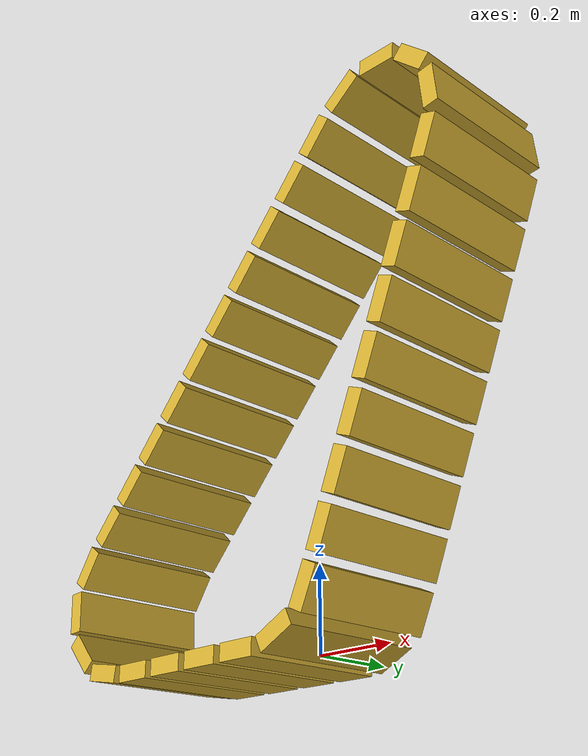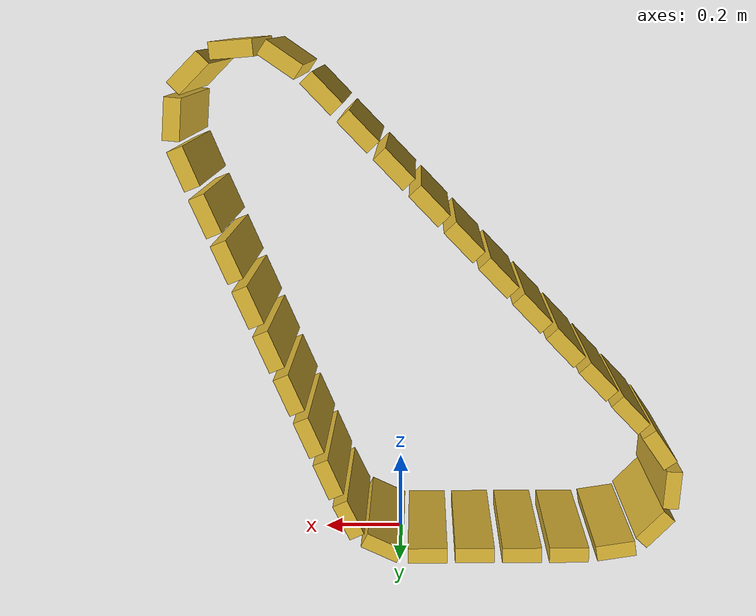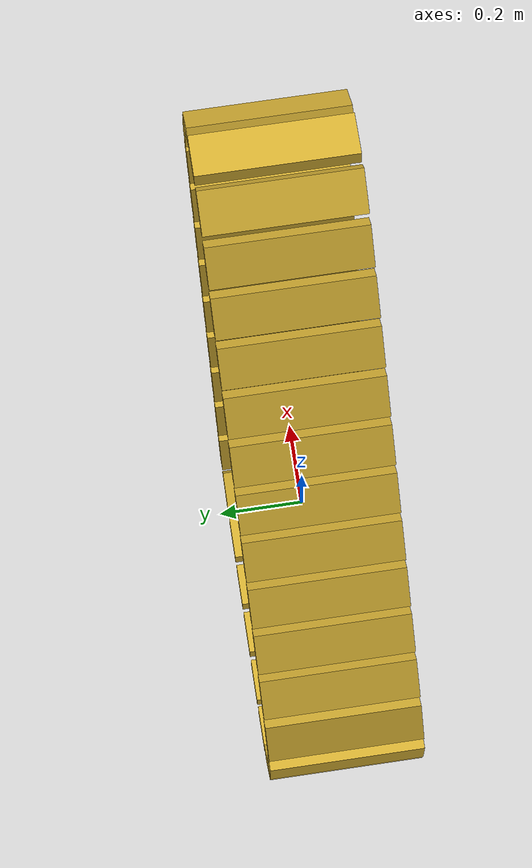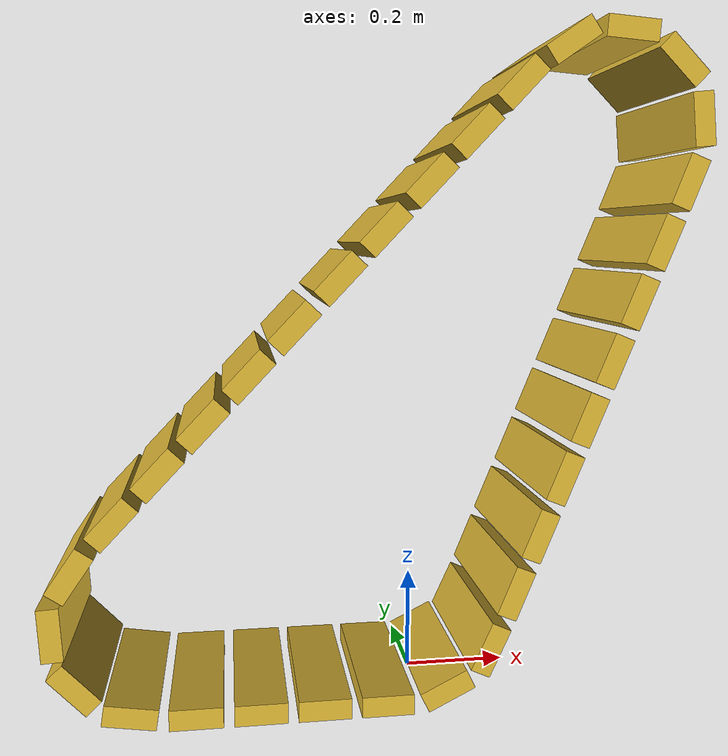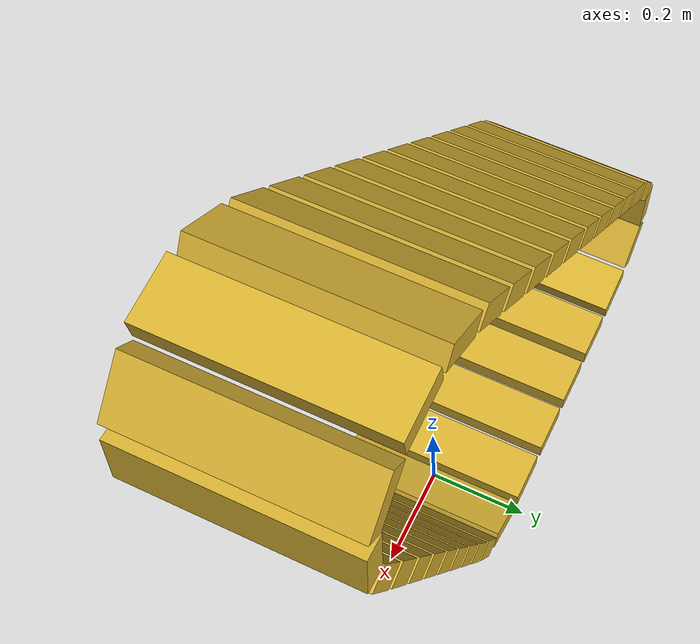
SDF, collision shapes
<sdf version='1.4'>
  <model name='Tracks'>
    <link name='base_link'>
      <pose>0 0 0 0 -0 0</pose>
      <inertial>
        <pose>-0.064905 -1.9608e-06 -0.00051348 0 -0 0</pose>
        <mass>1.5879</mass>
        <inertia>
          <ixx>0.015448</ixx>
          <ixy>1.7422e-07</ixy>
          <ixz>-3.9882e-06</ixz>
          <iyy>0.0022386</iyy>
          <iyz>1.7148e-08</iyz>
          <izz>0.017129</izz>
        </inertia>
      </inertial>
      <collision name='base_link_collision'>
        <pose>-0.07 0 0 0 -0 0</pose>
        <geometry>
          <box>
            <size>0.1 0.36 0.04</size>
          </box>
        </geometry>
        <surface>
          <contact>
            <ode/>
          </contact>
          <friction>
            <ode>
              <mu>1</mu>
              <mu2>1</mu2>
            </ode>
          </friction>
        </surface>
      </collision>
      <visual name='base_link_visual'>
        <pose>0 0 0 0 -0 0</pose>
        <geometry>
          <mesh>
            <scale>1 1 1</scale>
            <uri>model://tracks/meshes_trucks/base_link.STL</uri>
          </mesh>
        </geometry>
        <material>
          <script>
            <name>Gazebo/Gold</name>
            <uri>__default__</uri>
          </script>
        </material>
      </visual>
      <gravity>1</gravity>
      <velocity_decay>
        <linear>0</linear>
        <angular>0</angular>
      </velocity_decay>
      <self_collide>1</self_collide>
    </link>
<!--  Added by Nir -->
    <joint name='j33' type='revolute'>
      <child>base_link</child>
      <parent>l32</parent>
      <axis>
        <xyz>0 1 0</xyz>
        <limit>
          <lower>-1e+16</lower>
          <upper>1e+16</upper>
        </limit>
        <dynamics/>
      </axis>
    </joint>
<!-- End of Added by Nir -->
    <link name='l2'>
      <pose>-0.12 0 0 0 1.1102e-16 0</pose>
      <inertial>
        <pose>-0.064905 -1.9609e-06 -0.00051348 0 -0 0</pose>
        <mass>1.5879</mass>
        <inertia>
          <ixx>0.015448</ixx>
          <ixy>1.7425e-07</ixy>
          <ixz>-3.9884e-06</ixz>
          <iyy>0.0022386</iyy>
          <iyz>1.7631e-08</iyz>
          <izz>0.017129</izz>
        </inertia>
      </inertial>
      <collision name='l2_collision'>
        <pose>-0.07 0 0 0 -0 0</pose>
        <geometry>
          <box>
            <size>0.1 0.36 0.04</size>
          </box>
        </geometry>
        <surface>
          <contact>
            <ode/>
          </contact>
          <friction>
            <ode>
              <mu>1</mu>
              <mu2>1</mu2>
            </ode>
          </friction>
        </surface>
      </collision>
      <visual name='l2_visual'>
        <pose>0 0 0 0 -0 0</pose>
        <geometry>
          <mesh>
            <scale>1 1 1</scale>
            <uri>model://tracks/meshes_trucks/l2.STL</uri>
          </mesh>
        </geometry>
        <material>
          <script>
            <name>Gazebo/Gold</name>
            <uri>__default__</uri>
          </script>
        </material>
      </visual>
      <gravity>1</gravity>
      <velocity_decay>
        <linear>0</linear>
        <angular>0</angular>
      </velocity_decay>
      <self_collide>1</self_collide>
    </link>
    <joint name='j2' type='revolute'>
      <child>l2</child>
      <parent>base_link</parent>
      <axis>
        <xyz>0 1 0</xyz>
        <limit>
          <lower>-1e+16</lower>
          <upper>1e+16</upper>
        </limit>
        <dynamics/>
      </axis>
    </joint>
    <link name='l3'>
      <pose>-0.24 0 1.33224e-17 0 2.22042e-16 0</pose>
      <inertial>
        <pose>-0.0649046 -1.96086e-06 -0.00051348 0 -0 0</pose>
        <mass>1.58786</mass>
        <inertia>
          <ixx>0.0154478</ixx>
          <ixy>1.74252e-07</ixy>
          <ixz>-3.98842e-06</ixz>
          <iyy>0.00223864</iyy>
          <iyz>1.76305e-08</iyz>
          <izz>0.0171293</izz>
        </inertia>
      </inertial>
      <collision name='l3_collision'>
        <pose>-0.07 0 0 0 -0 0</pose>
        <geometry>
          <box>
            <size>0.1 0.36 0.04</size>
          </box>
        </geometry>
        <surface>
          <contact>
            <ode/>
          </contact>
          <friction>
            <ode>
              <mu>1</mu>
              <mu2>1</mu2>
            </ode>
          </friction>
        </surface>
      </collision>
      <visual name='l3_visual'>
        <pose>0 0 0 0 -0 0</pose>
        <geometry>
          <mesh>
            <scale>1 1 1</scale>
            <uri>model://tracks/meshes_trucks/l3.STL</uri>
          </mesh>
        </geometry>
        <material>
          <script>
            <name>Gazebo/Gold</name>
            <uri>__default__</uri>
          </script>
        </material>
      </visual>
      <gravity>1</gravity>
      <velocity_decay>
        <linear>0</linear>
        <angular>0</angular>
      </velocity_decay>
      <self_collide>1</self_collide>
    </link>
    <joint name='j3' type='revolute'>
      <child>l3</child>
      <parent>l2</parent>
      <axis>
        <xyz>0 1 0</xyz>
        <limit>
          <lower>-1e+16</lower>
          <upper>1e+16</upper>
        </limit>
        <dynamics/>
      </axis>
    </joint>
    <link name='l4'>
      <pose>-0.36 0 3.99675e-17 0 3.33065e-16 0</pose>
      <inertial>
        <pose>-0.0649046 -1.96086e-06 -0.00051348 0 -0 0</pose>
        <mass>1.58786</mass>
        <inertia>
          <ixx>0.0154478</ixx>
          <ixy>1.74252e-07</ixy>
          <ixz>-3.98842e-06</ixz>
          <iyy>0.00223864</iyy>
          <iyz>1.76305e-08</iyz>
          <izz>0.0171293</izz>
        </inertia>
      </inertial>
      <collision name='l4_collision'>
        <pose>-0.07 0 0 0 -0 0</pose>
        <geometry>
          <box>
            <size>0.1 0.36 0.04</size>
          </box>
        </geometry>
        <surface>
          <contact>
            <ode/>
          </contact>
          <friction>
            <ode>
              <mu>1</mu>
              <mu2>1</mu2>
            </ode>
          </friction>
        </surface>
      </collision>
      <visual name='l4_visual'>
        <pose>0 0 0 0 -0 0</pose>
        <geometry>
          <mesh>
            <scale>1 1 1</scale>
            <uri>model://tracks/meshes_trucks/l4.STL</uri>
          </mesh>
        </geometry>
        <material>
          <script>
            <name>Gazebo/Gold</name>
            <uri>__default__</uri>
          </script>
        </material>
      </visual>
      <gravity>1</gravity>
      <velocity_decay>
        <linear>0</linear>
        <angular>0</angular>
      </velocity_decay>
      <self_collide>1</self_collide>
    </link>
    <joint name='j4' type='revolute'>
      <child>l4</child>
      <parent>l3</parent>
      <axis>
        <xyz>0 1 0</xyz>
        <limit>
          <lower>-1e+16</lower>
          <upper>1e+16</upper>
        </limit>
        <dynamics/>
      </axis>
    </joint>
    <link name='l5'>
      <pose>-0.48 0 7.99352e-17 -9.53543e-17 0.155064 -4.70831e-17</pose>
      <inertial>
        <pose>-0.0649045 -1.97013e-06 -0.000513472 0 -0 0</pose>
        <mass>1.58786</mass>
        <inertia>
          <ixx>0.0154478</ixx>
          <ixy>1.73413e-07</ixy>
          <ixz>-3.98887e-06</ixz>
          <iyy>0.00223864</iyy>
          <iyz>1.6511e-08</iyz>
          <izz>0.0171293</izz>
        </inertia>
      </inertial>
      <collision name='l5_collision'>
        <pose>-0.07 0 0 0 -0 0</pose>
        <geometry>
          <box>
            <size>0.1 0.36 0.04</size>
          </box>
        </geometry>
        <surface>
          <contact>
            <ode/>
          </contact>
          <friction>
            <ode>
              <mu>1</mu>
              <mu2>1</mu2>
            </ode>
          </friction>
        </surface>
      </collision>
      <visual name='l5_visual'>
        <pose>0 0 0 0 -0 0</pose>
        <geometry>
          <mesh>
            <scale>1 1 1</scale>
            <uri>model://tracks/meshes_trucks/l5.STL</uri>
          </mesh>
        </geometry>
        <material>
          <script>
            <name>Gazebo/Gold</name>
            <uri>__default__</uri>
          </script>
        </material>
      </visual>
      <gravity>1</gravity>
      <velocity_decay>
        <linear>0</linear>
        <angular>0</angular>
      </velocity_decay>
      <self_collide>1</self_collide>
    </link>
    <joint name='J5' type='revolute'>
      <child>l5</child>
      <parent>l4</parent>
      <axis>
        <xyz>3.23563e-17 1 -9.42102e-17</xyz>
        <limit>
          <lower>-1e+16</lower>
          <upper>1e+16</upper>
        </limit>
        <dynamics/>
      </axis>
    </joint>
    <link name='l6'>
      <pose>-0.59856 5.58218e-18 0.0185332 -7.42049e-16 0.814344 -5.40278e-16</pose>
      <inertial>
        <pose>-0.0649043 -1.54746e-06 -0.00051344 0 -0 0</pose>
        <mass>1.58786</mass>
        <inertia>
          <ixx>0.0154477</ixx>
          <ixy>1.21497e-07</ixy>
          <ixz>-3.98994e-06</ixz>
          <iyy>0.00223861</iyy>
          <iyz>1.12343e-08</iyz>
          <izz>0.0171292</izz>
        </inertia>
      </inertial>
      <collision name='l6_collision'>
        <pose>-0.07 0 0 0 -0 0</pose>
        <geometry>
          <box>
            <size>0.1 0.36 0.04</size>
          </box>
        </geometry>
        <surface>
          <contact>
            <ode/>
          </contact>
          <friction>
            <ode>
              <mu>1</mu>
              <mu2>1</mu2>
            </ode>
          </friction>
        </surface>
      </collision>
      <visual name='l6_visual'>
        <pose>0 0 0 0 -0 0</pose>
        <geometry>
          <mesh>
            <scale>1 1 1</scale>
            <uri>model://tracks/meshes_trucks/l6.STL</uri>
          </mesh>
        </geometry>
        <material>
          <script>
            <name>Gazebo/Gold</name>
            <uri>__default__</uri>
          </script>
        </material>
      </visual>
      <gravity>1</gravity>
      <velocity_decay>
        <linear>0</linear>
        <angular>0</angular>
      </velocity_decay>
      <self_collide>1</self_collide>
    </link>
    <joint name='j6' type='revolute'>
      <child>l6</child>
      <parent>l5</parent>
      <axis>
        <xyz>6.03822e-19 1 -5.09302e-16</xyz>
        <limit>
          <lower>-1e+16</lower>
          <upper>1e+16</upper>
        </limit>
        <dynamics/>
      </axis>
    </joint>
    <link name='l7'>
      <pose>-0.680922 5.00803e-17 0.105806 -1.46904e-14 1.51426 -1.43651e-14</pose>
      <inertial>
        <pose>-0.0649046 -1.96085e-06 -0.000513483 0 -0 0</pose>
        <mass>1.58786</mass>
        <inertia>
          <ixx>0.0154478</ixx>
          <ixy>1.74217e-07</ixy>
          <ixz>-3.98819e-06</ixz>
          <iyy>0.00223864</iyy>
          <iyz>1.7148e-08</iyz>
          <izz>0.0171293</izz>
        </inertia>
      </inertial>
      <collision name='l7_collision'>
        <pose>-0.07 0 0 0 -0 0</pose>
        <geometry>
          <box>
            <size>0.1 0.36 0.04</size>
          </box>
        </geometry>
        <surface>
          <contact>
            <ode/>
          </contact>
          <friction>
            <ode>
              <mu>1</mu>
              <mu2>1</mu2>
            </ode>
          </friction>
        </surface>
      </collision>
      <visual name='l7_visual'>
        <pose>0 0 0 0 -0 0</pose>
        <geometry>
          <mesh>
            <scale>1 1 1</scale>
            <uri>model://tracks/meshes_trucks/l7.STL</uri>
          </mesh>
        </geometry>
        <material>
          <script>
            <name>Gazebo/Gold</name>
            <uri>__default__</uri>
          </script>
        </material>
      </visual>
      <gravity>1</gravity>
      <velocity_decay>
        <linear>0</linear>
        <angular>0</angular>
      </velocity_decay>
      <self_collide>1</self_collide>
    </link>
    <joint name='j7' type='revolute'>
      <child>l7</child>
      <parent>l6</parent>
      <axis>
        <xyz>-3.01869e-16 1 -8.30141e-16</xyz>
        <limit>
          <lower>-1e+16</lower>
          <upper>1e+16</upper>
        </limit>
        <dynamics/>
      </axis>
    </joint>
    <link name='l8'>
      <pose>-0.687703 1.47491e-16 0.225614 -3.14159 0.967523 -3.14159</pose>
      <inertial>
        <pose>-0.0649043 -1.54952e-06 -0.00051344 0 -0 0</pose>
        <mass>1.58786</mass>
        <inertia>
          <ixx>0.0154477</ixx>
          <ixy>1.18985e-07</ixy>
          <ixz>-3.98982e-06</ixz>
          <iyy>0.00223861</iyy>
          <iyz>1.18124e-08</iyz>
          <izz>0.0171292</izz>
        </inertia>
      </inertial>
      <collision name='l8_collision'>
        <pose>-0.07 0 0 0 -0 0</pose>
        <geometry>
          <box>
            <size>0.1 0.36 0.04</size>
          </box>
        </geometry>
        <surface>
          <contact>
            <ode/>
          </contact>
          <friction>
            <ode>
              <mu>1</mu>
              <mu2>1</mu2>
            </ode>
          </friction>
        </surface>
      </collision>
      <visual name='l8_visual'>
        <pose>0 0 0 0 -0 0</pose>
        <geometry>
          <mesh>
            <scale>1 1 1</scale>
            <uri>model://tracks/meshes_trucks/l8.STL</uri>
          </mesh>
        </geometry>
        <material>
          <script>
            <name>Gazebo/Gold</name>
            <uri>__default__</uri>
          </script>
        </material>
      </visual>
      <gravity>1</gravity>
      <velocity_decay>
        <linear>0</linear>
        <angular>0</angular>
      </velocity_decay>
      <self_collide>1</self_collide>
    </link>
    <joint name='j8' type='revolute'>
      <child>l8</child>
      <parent>l7</parent>
      <axis>
        <xyz>-7.14708e-16 1 -8.86211e-16</xyz>
        <limit>
          <lower>-1e+16</lower>
          <upper>1e+16</upper>
        </limit>
        <dynamics/>
      </axis>
    </joint>
    <link name='l9'>
      <pose>-0.619622 2.83723e-16 0.324432 -3.14159 0.811416 -3.14159</pose>
      <inertial>
        <pose>-0.0649043 -1.54829e-06 -0.000513439 0 -0 0</pose>
        <mass>1.58786</mass>
        <inertia>
          <ixx>0.0154477</ixx>
          <ixy>1.2085e-07</ixy>
          <ixz>-3.98995e-06</ixz>
          <iyy>0.00223861</iyy>
          <iyz>1.12803e-08</iyz>
          <izz>0.0171292</izz>
        </inertia>
      </inertial>
      <collision name='l9_collision'>
        <pose>-0.07 0 0 0 -0 0</pose>
        <geometry>
          <box>
            <size>0.1 0.36 0.04</size>
          </box>
        </geometry>
        <surface>
          <contact>
            <ode/>
          </contact>
          <friction>
            <ode>
              <mu>1</mu>
              <mu2>1</mu2>
            </ode>
          </friction>
        </surface>
      </collision>
      <visual name='l9_visual'>
        <pose>0 0 0 0 -0 0</pose>
        <geometry>
          <mesh>
            <scale>1 1 1</scale>
            <uri>model://tracks/meshes_trucks/l9.STL</uri>
          </mesh>
        </geometry>
        <material>
          <script>
            <name>Gazebo/Gold</name>
            <uri>__default__</uri>
          </script>
        </material>
      </visual>
      <gravity>1</gravity>
      <velocity_decay>
        <linear>0</linear>
        <angular>0</angular>
      </velocity_decay>
      <self_collide>1</self_collide>
    </link>
    <joint name='j9' type='revolute'>
      <child>l9</child>
      <parent>l8</parent>
      <axis>
        <xyz>-8.11276e-16 1 -8.59176e-16</xyz>
        <limit>
          <lower>-1e+16</lower>
          <upper>1e+16</upper>
        </limit>
        <dynamics/>
      </axis>
    </joint>
    <link name='l10'>
      <pose>-0.537005 4.25523e-16 0.411464 -3.14159 0.811416 -3.14159</pose>
      <inertial>
        <pose>-0.0649043 -1.54829e-06 -0.000513439 0 -0 0</pose>
        <mass>1.58786</mass>
        <inertia>
          <ixx>0.0154477</ixx>
          <ixy>1.2085e-07</ixy>
          <ixz>-3.98995e-06</ixz>
          <iyy>0.00223861</iyy>
          <iyz>1.12803e-08</iyz>
          <izz>0.0171292</izz>
        </inertia>
      </inertial>
      <collision name='l10_collision'>
        <pose>-0.07 0 0 0 -0 0</pose>
        <geometry>
          <box>
            <size>0.1 0.36 0.04</size>
          </box>
        </geometry>
        <surface>
          <contact>
            <ode/>
          </contact>
          <friction>
            <ode>
              <mu>1</mu>
              <mu2>1</mu2>
            </ode>
          </friction>
        </surface>
      </collision>
      <visual name='l10_visual'>
        <pose>0 0 0 0 -0 0</pose>
        <geometry>
          <mesh>
            <scale>1 1 1</scale>
            <uri>model://tracks/meshes_trucks/l10.STL</uri>
          </mesh>
        </geometry>
        <material>
          <script>
            <name>Gazebo/Gold</name>
            <uri>__default__</uri>
          </script>
        </material>
      </visual>
      <gravity>1</gravity>
      <velocity_decay>
        <linear>0</linear>
        <angular>0</angular>
      </velocity_decay>
      <self_collide>1</self_collide>
    </link>
    <joint name='j10' type='revolute'>
      <child>l10</child>
      <parent>l9</parent>
      <axis>
        <xyz>-8.11276e-16 1 -8.59176e-16</xyz>
        <limit>
          <lower>-1e+16</lower>
          <upper>1e+16</upper>
        </limit>
        <dynamics/>
      </axis>
    </joint>
    <link name='l11'>
      <pose>-0.454388 5.67323e-16 0.498495 -3.14159 0.811416 -3.14159</pose>
      <inertial>
        <pose>-0.0649043 -1.54941e-06 -0.000513439 0 -0 0</pose>
        <mass>1.58786</mass>
        <inertia>
          <ixx>0.0154477</ixx>
          <ixy>1.20967e-07</ixy>
          <ixz>-3.98996e-06</ixz>
          <iyy>0.00223861</iyy>
          <iyz>1.13125e-08</iyz>
          <izz>0.0171292</izz>
        </inertia>
      </inertial>
      <collision name='l11_collision'>
        <pose>-0.07 0 0 0 -0 0</pose>
        <geometry>
          <box>
            <size>0.1 0.36 0.04</size>
          </box>
        </geometry>
        <surface>
          <contact>
            <ode/>
          </contact>
          <friction>
            <ode>
              <mu>1</mu>
              <mu2>1</mu2>
            </ode>
          </friction>
        </surface>
      </collision>
      <visual name='l11_visual'>
        <pose>0 0 0 0 -0 0</pose>
        <geometry>
          <mesh>
            <scale>1 1 1</scale>
            <uri>model://tracks/meshes_trucks/l11.STL</uri>
          </mesh>
        </geometry>
        <material>
          <script>
            <name>Gazebo/Gold</name>
            <uri>__default__</uri>
          </script>
        </material>
      </visual>
      <gravity>1</gravity>
      <velocity_decay>
        <linear>0</linear>
        <angular>0</angular>
      </velocity_decay>
      <self_collide>1</self_collide>
    </link>
    <joint name='j11' type='revolute'>
      <child>l11</child>
      <parent>l10</parent>
      <axis>
        <xyz>-8.11276e-16 1 -8.59176e-16</xyz>
        <limit>
          <lower>-1e+16</lower>
          <upper>1e+16</upper>
        </limit>
        <dynamics/>
      </axis>
    </joint>
    <link name='l12'>
      <pose>-0.371772 7.09123e-16 0.585527 -3.14159 0.811416 -3.14159</pose>
      <inertial>
        <pose>-0.0649043 -1.54941e-06 -0.000513439 0 -0 0</pose>
        <mass>1.58786</mass>
        <inertia>
          <ixx>0.0154477</ixx>
          <ixy>1.20967e-07</ixy>
          <ixz>-3.98996e-06</ixz>
          <iyy>0.00223861</iyy>
          <iyz>1.13125e-08</iyz>
          <izz>0.0171292</izz>
        </inertia>
      </inertial>
      <collision name='l12_collision'>
        <pose>-0.07 0 0 0 -0 0</pose>
        <geometry>
          <box>
            <size>0.1 0.36 0.04</size>
          </box>
        </geometry>
        <surface>
          <contact>
            <ode/>
          </contact>
          <friction>
            <ode>
              <mu>1</mu>
              <mu2>1</mu2>
            </ode>
          </friction>
        </surface>
      </collision>
      <visual name='l12_visual'>
        <pose>0 0 0 0 -0 0</pose>
        <geometry>
          <mesh>
            <scale>1 1 1</scale>
            <uri>model://tracks/meshes_trucks/l12.STL</uri>
          </mesh>
        </geometry>
        <material>
          <script>
            <name>Gazebo/Gold</name>
            <uri>__default__</uri>
          </script>
        </material>
      </visual>
      <gravity>1</gravity>
      <velocity_decay>
        <linear>0</linear>
        <angular>0</angular>
      </velocity_decay>
      <self_collide>1</self_collide>
    </link>
    <joint name='j12' type='revolute'>
      <child>l12</child>
      <parent>l11</parent>
      <axis>
        <xyz>-8.11276e-16 1 -8.59176e-16</xyz>
        <limit>
          <lower>-1e+16</lower>
          <upper>1e+16</upper>
        </limit>
        <dynamics/>
      </axis>
    </joint>
    <link name='l13'>
      <pose>-0.289155 8.50924e-16 0.672558 -3.14159 0.811416 -3.14159</pose>
      <inertial>
        <pose>-0.0649043 -1.54829e-06 -0.000513439 0 -0 0</pose>
        <mass>1.58786</mass>
        <inertia>
          <ixx>0.0154477</ixx>
          <ixy>1.2085e-07</ixy>
          <ixz>-3.98995e-06</ixz>
          <iyy>0.00223861</iyy>
          <iyz>1.12803e-08</iyz>
          <izz>0.0171292</izz>
        </inertia>
      </inertial>
      <collision name='l13_collision'>
        <pose>-0.07 0 0 0 -0 0</pose>
        <geometry>
          <box>
            <size>0.1 0.36 0.04</size>
          </box>
        </geometry>
        <surface>
          <contact>
            <ode/>
          </contact>
          <friction>
            <ode>
              <mu>1</mu>
              <mu2>1</mu2>
            </ode>
          </friction>
        </surface>
      </collision>
      <visual name='l13_visual'>
        <pose>0 0 0 0 -0 0</pose>
        <geometry>
          <mesh>
            <scale>1 1 1</scale>
            <uri>model://tracks/meshes_trucks/l13.STL</uri>
          </mesh>
        </geometry>
        <material>
          <script>
            <name>Gazebo/Gold</name>
            <uri>__default__</uri>
          </script>
        </material>
      </visual>
      <gravity>1</gravity>
      <velocity_decay>
        <linear>0</linear>
        <angular>0</angular>
      </velocity_decay>
      <self_collide>1</self_collide>
    </link>
    <joint name='j13' type='revolute'>
      <child>l13</child>
      <parent>l12</parent>
      <axis>
        <xyz>-8.11276e-16 1 -8.59176e-16</xyz>
        <limit>
          <lower>-1e+16</lower>
          <upper>1e+16</upper>
        </limit>
        <dynamics/>
      </axis>
    </joint>
    <link name='l14'>
      <pose>-0.206538 9.92724e-16 0.75959 -3.14159 0.811416 -3.14159</pose>
      <inertial>
        <pose>-0.0649043 -1.54829e-06 -0.000513439 0 -0 0</pose>
        <mass>1.58786</mass>
        <inertia>
          <ixx>0.0154477</ixx>
          <ixy>1.2085e-07</ixy>
          <ixz>-3.98995e-06</ixz>
          <iyy>0.00223861</iyy>
          <iyz>1.12803e-08</iyz>
          <izz>0.0171292</izz>
        </inertia>
      </inertial>
      <collision name='l14_collision'>
        <pose>-0.07 0 0 0 -0 0</pose>
        <geometry>
          <box>
            <size>0.1 0.36 0.04</size>
          </box>
        </geometry>
        <surface>
          <contact>
            <ode/>
          </contact>
          <friction>
            <ode>
              <mu>1</mu>
              <mu2>1</mu2>
            </ode>
          </friction>
        </surface>
      </collision>
      <visual name='l14_visual'>
        <pose>0 0 0 0 -0 0</pose>
        <geometry>
          <mesh>
            <scale>1 1 1</scale>
            <uri>model://tracks/meshes_trucks/l14.STL</uri>
          </mesh>
        </geometry>
        <material>
          <script>
            <name>Gazebo/Gold</name>
            <uri>__default__</uri>
          </script>
        </material>
      </visual>
      <gravity>1</gravity>
      <velocity_decay>
        <linear>0</linear>
        <angular>0</angular>
      </velocity_decay>
      <self_collide>1</self_collide>
    </link>
    <joint name='j14' type='revolute'>
      <child>l14</child>
      <parent>l13</parent>
      <axis>
        <xyz>-8.11276e-16 1 -8.59176e-16</xyz>
        <limit>
          <lower>-1e+16</lower>
          <upper>1e+16</upper>
        </limit>
        <dynamics/>
      </axis>
    </joint>
    <link name='l15'>
      <pose>-0.123922 1.13452e-15 0.846621 -3.14159 0.811416 -3.14159</pose>
      <inertial>
        <pose>-0.0649043 -1.54829e-06 -0.000513439 0 -0 0</pose>
        <mass>1.58786</mass>
        <inertia>
          <ixx>0.0154477</ixx>
          <ixy>1.2085e-07</ixy>
          <ixz>-3.98995e-06</ixz>
          <iyy>0.00223861</iyy>
          <iyz>1.12803e-08</iyz>
          <izz>0.0171292</izz>
        </inertia>
      </inertial>
      <collision name='l15_collision'>
        <pose>-0.07 0 0 0 -0 0</pose>
        <geometry>
          <box>
            <size>0.1 0.36 0.04</size>
          </box>
        </geometry>
        <surface>
          <contact>
            <ode/>
          </contact>
          <friction>
            <ode>
              <mu>1</mu>
              <mu2>1</mu2>
            </ode>
          </friction>
        </surface>
      </collision>
      <visual name='l15_visual'>
        <pose>0 0 0 0 -0 0</pose>
        <geometry>
          <mesh>
            <scale>1 1 1</scale>
            <uri>model://tracks/meshes_trucks/l15.STL</uri>
          </mesh>
        </geometry>
        <material>
          <script>
            <name>Gazebo/Gold</name>
            <uri>__default__</uri>
          </script>
        </material>
      </visual>
      <gravity>1</gravity>
      <velocity_decay>
        <linear>0</linear>
        <angular>0</angular>
      </velocity_decay>
      <self_collide>1</self_collide>
    </link>
    <joint name='j15' type='revolute'>
      <child>l15</child>
      <parent>l14</parent>
      <axis>
        <xyz>-8.11276e-16 1 -8.59176e-16</xyz>
        <limit>
          <lower>-1e+16</lower>
          <upper>1e+16</upper>
        </limit>
        <dynamics/>
      </axis>
    </joint>
    <link name='l16'>
      <pose>-0.0413051 1.27632e-15 0.933653 -3.14159 0.811416 -3.14159</pose>
      <inertial>
        <pose>-0.0649043 -1.54941e-06 -0.000513439 0 -0 0</pose>
        <mass>1.58786</mass>
        <inertia>
          <ixx>0.0154477</ixx>
          <ixy>1.20967e-07</ixy>
          <ixz>-3.98996e-06</ixz>
          <iyy>0.00223861</iyy>
          <iyz>1.13125e-08</iyz>
          <izz>0.0171292</izz>
        </inertia>
      </inertial>
      <collision name='l16_collision'>
        <pose>-0.07 0 0 0 -0 0</pose>
        <geometry>
          <box>
            <size>0.1 0.36 0.04</size>
          </box>
        </geometry>
        <surface>
          <contact>
            <ode/>
          </contact>
          <friction>
            <ode>
              <mu>1</mu>
              <mu2>1</mu2>
            </ode>
          </friction>
        </surface>
      </collision>
      <visual name='l16_visual'>
        <pose>0 0 0 0 -0 0</pose>
        <geometry>
          <mesh>
            <scale>1 1 1</scale>
            <uri>model://tracks/meshes_trucks/l16.STL</uri>
          </mesh>
        </geometry>
        <material>
          <script>
            <name>Gazebo/Gold</name>
            <uri>__default__</uri>
          </script>
        </material>
      </visual>
      <gravity>1</gravity>
      <velocity_decay>
        <linear>0</linear>
        <angular>0</angular>
      </velocity_decay>
      <self_collide>1</self_collide>
    </link>
    <joint name='j16' type='revolute'>
      <child>l16</child>
      <parent>l15</parent>
      <axis>
        <xyz>-8.11276e-16 1 -8.59176e-16</xyz>
        <limit>
          <lower>-1e+16</lower>
          <upper>1e+16</upper>
        </limit>
        <dynamics/>
      </axis>
    </joint>
    <link name='l17'>
      <pose>0.0413116 1.41812e-15 1.02068 -3.14159 0.811416 -3.14159</pose>
      <inertial>
        <pose>-0.0649043 -1.54941e-06 -0.000513439 0 -0 0</pose>
        <mass>1.58786</mass>
        <inertia>
          <ixx>0.0154477</ixx>
          <ixy>1.20967e-07</ixy>
          <ixz>-3.98996e-06</ixz>
          <iyy>0.00223861</iyy>
          <iyz>1.13125e-08</iyz>
          <izz>0.0171292</izz>
        </inertia>
      </inertial>
      <collision name='l17_collision'>
        <pose>-0.07 0 0 0 -0 0</pose>
        <geometry>
          <box>
            <size>0.1 0.36 0.04</size>
          </box>
        </geometry>
        <surface>
          <contact>
            <ode/>
          </contact>
          <friction>
            <ode>
              <mu>1</mu>
              <mu2>1</mu2>
            </ode>
          </friction>
        </surface>
      </collision>
      <visual name='l17_visual'>
        <pose>0 0 0 0 -0 0</pose>
        <geometry>
          <mesh>
            <scale>1 1 1</scale>
            <uri>model://tracks/meshes_trucks/l17.STL</uri>
          </mesh>
        </geometry>
        <material>
          <script>
            <name>Gazebo/Gold</name>
            <uri>__default__</uri>
          </script>
        </material>
      </visual>
      <gravity>1</gravity>
      <velocity_decay>
        <linear>0</linear>
        <angular>0</angular>
      </velocity_decay>
      <self_collide>1</self_collide>
    </link>
    <joint name='j17' type='revolute'>
      <child>l17</child>
      <parent>l16</parent>
      <axis>
        <xyz>-8.11276e-16 1 -8.59176e-16</xyz>
        <limit>
          <lower>-1e+16</lower>
          <upper>1e+16</upper>
        </limit>
        <dynamics/>
      </axis>
    </joint>
    <link name='l18'>
      <pose>0.123928 1.55993e-15 1.10772 -3.14159 0.811416 -3.14159</pose>
      <inertial>
        <pose>-0.0649043 -1.54829e-06 -0.000513439 0 -0 0</pose>
        <mass>1.58786</mass>
        <inertia>
          <ixx>0.0154477</ixx>
          <ixy>1.2085e-07</ixy>
          <ixz>-3.98995e-06</ixz>
          <iyy>0.00223861</iyy>
          <iyz>1.12803e-08</iyz>
          <izz>0.0171292</izz>
        </inertia>
      </inertial>
      <collision name='l18_collision'>
        <pose>-0.07 0 0 0 -0 0</pose>
        <geometry>
          <box>
            <size>0.1 0.36 0.04</size>
          </box>
        </geometry>
        <surface>
          <contact>
            <ode/>
          </contact>
          <friction>
            <ode>
              <mu>1</mu>
              <mu2>1</mu2>
            </ode>
          </friction>
        </surface>
      </collision>
      <visual name='l18_visual'>
        <pose>0 0 0 0 -0 0</pose>
        <geometry>
          <mesh>
            <scale>1 1 1</scale>
            <uri>model://tracks/meshes_trucks/l18.STL</uri>
          </mesh>
        </geometry>
        <material>
          <script>
            <name>Gazebo/Gold</name>
            <uri>__default__</uri>
          </script>
        </material>
      </visual>
      <gravity>1</gravity>
      <velocity_decay>
        <linear>0</linear>
        <angular>0</angular>
      </velocity_decay>
      <self_collide>1</self_collide>
    </link>
    <joint name='j18' type='revolute'>
      <child>l18</child>
      <parent>l17</parent>
      <axis>
        <xyz>-8.11276e-16 1 -8.59176e-16</xyz>
        <limit>
          <lower>-1e+16</lower>
          <upper>1e+16</upper>
        </limit>
        <dynamics/>
      </axis>
    </joint>
    <link name='l19'>
      <pose>0.206545 1.70173e-15 1.19475 -3.14159 0.604488 -3.14159</pose>
      <inertial>
        <pose>-0.0649046 -1.94983e-06 -0.000513427 0 -0 0</pose>
        <mass>1.58786</mass>
        <inertia>
          <ixx>0.0154478</ixx>
          <ixy>1.76082e-07</ixy>
          <ixz>-3.99122e-06</ixz>
          <iyy>0.00223864</iyy>
          <iyz>8.83611e-09</iyz>
          <izz>0.0171293</izz>
        </inertia>
      </inertial>
      <collision name='l19_collision'>
        <pose>-0.07 0 0 0 -0 0</pose>
        <geometry>
          <box>
            <size>0.1 0.36 0.04</size>
          </box>
        </geometry>
        <surface>
          <contact>
            <ode/>
          </contact>
          <friction>
            <ode>
              <mu>1</mu>
              <mu2>1</mu2>
            </ode>
          </friction>
        </surface>
      </collision>
      <visual name='l19_visual'>
        <pose>0 0 0 0 -0 0</pose>
        <geometry>
          <mesh>
            <scale>1 1 1</scale>
            <uri>model://tracks/meshes_trucks/l19.STL</uri>
          </mesh>
        </geometry>
        <material>
          <script>
            <name>Gazebo/Gold</name>
            <uri>__default__</uri>
          </script>
        </material>
      </visual>
      <gravity>1</gravity>
      <velocity_decay>
        <linear>0</linear>
        <angular>0</angular>
      </velocity_decay>
      <self_collide>1</self_collide>
    </link>
    <joint name='j19' type='revolute'>
      <child>l19</child>
      <parent>l18</parent>
      <axis>
        <xyz>-9.30617e-16 1 -8.00866e-16</xyz>
        <limit>
          <lower>-1e+16</lower>
          <upper>1e+16</upper>
        </limit>
        <dynamics/>
      </axis>
    </joint>
    <link name='l20'>
      <pose>0.30528 1.84823e-15 1.26295 -3.14159 -0.0757946 -3.14159</pose>
      <inertial>
        <pose>-0.0649046 -1.96179e-06 -0.00051348 0 -0 0</pose>
        <mass>1.58786</mass>
        <inertia>
          <ixx>0.0154478</ixx>
          <ixy>1.74345e-07</ixy>
          <ixz>-3.98844e-06</ixz>
          <iyy>0.00223864</iyy>
          <iyz>1.76742e-08</iyz>
          <izz>0.0171293</izz>
        </inertia>
      </inertial>
      <collision name='l20_collision'>
        <pose>-0.07 0 0 0 -0 0</pose>
        <geometry>
          <box>
            <size>0.1 0.36 0.04</size>
          </box>
        </geometry>
        <surface>
          <contact>
            <ode/>
          </contact>
          <friction>
            <ode>
              <mu>1</mu>
              <mu2>1</mu2>
            </ode>
          </friction>
        </surface>
      </collision>
      <visual name='l20_visual'>
        <pose>0 0 0 0 -0 0</pose>
        <geometry>
          <mesh>
            <scale>1 1 1</scale>
            <uri>model://tracks/meshes_trucks/l20.STL</uri>
          </mesh>
        </geometry>
        <material>
          <script>
            <name>Gazebo/Gold</name>
            <uri>__default__</uri>
          </script>
        </material>
        <material>
          <script>
            <name>Gazebo/Gold</name>
            <uri>__default__</uri>
          </script>
        </material>
      </visual>
      <gravity>1</gravity>
      <velocity_decay>
        <linear>0</linear>
        <angular>0</angular>
      </velocity_decay>
      <self_collide>1</self_collide>
    </link>
    <joint name='j20' type='revolute'>
      <child>l20</child>
      <parent>l19</parent>
      <axis>
        <xyz>-1.19797e-15 1 -4.65281e-16</xyz>
        <limit>
          <lower>-1e+16</lower>
          <upper>1e+16</upper>
        </limit>
        <dynamics/>
      </axis>
    </joint>
    <link name='l21'>
      <pose>0.424936 1.98735e-15 1.25386 -3.14159 -0.775708 -3.14159</pose>
      <inertial>
        <pose>-0.0649043 -1.54792e-06 -0.000513439 0 -0 0</pose>
        <mass>1.58786</mass>
        <inertia>
          <ixx>0.0154477</ixx>
          <ixy>1.21032e-07</ixy>
          <ixz>-3.98995e-06</ixz>
          <iyy>0.00223861</iyy>
          <iyz>1.12608e-08</iyz>
          <izz>0.0171292</izz>
        </inertia>
      </inertial>
      <collision name='l21_collision'>
        <pose>-0.07 0 0 0 -0 0</pose>
        <geometry>
          <box>
            <size>0.1 0.36 0.04</size>
          </box>
        </geometry>
        <surface>
          <contact>
            <ode/>
          </contact>
          <friction>
            <ode>
              <mu>1</mu>
              <mu2>1</mu2>
            </ode>
          </friction>
        </surface>
      </collision>
      <visual name='l21_visual'>
        <pose>0 0 0 0 -0 0</pose>
        <geometry>
          <mesh>
            <scale>1 1 1</scale>
            <uri>model://tracks/meshes_trucks/l21.STL</uri>
          </mesh>
        </geometry>
        <material>
          <script>
            <name>Gazebo/Gold</name>
            <uri>__default__</uri>
          </script>
        </material>
        <material>
          <script>
            <name>Gazebo/Gold</name>
            <uri>__default__</uri>
          </script>
        </material>
      </visual>
      <gravity>1</gravity>
      <velocity_decay>
        <linear>0</linear>
        <angular>0</angular>
      </velocity_decay>
      <self_collide>1</self_collide>
    </link>
    <joint name='j21' type='revolute'>
      <child>l21</child>
      <parent>l20</parent>
      <axis>
        <xyz>-1.1903e-15 1 -2.44086e-17</xyz>
        <limit>
          <lower>-1e+16</lower>
          <upper>1e+16</upper>
        </limit>
        <dynamics/>
      </axis>
    </joint>
    <link name='l22'>
      <pose>0.510607 2.08727e-15 1.16984 3.14159 -1.47562 -3.14159</pose>
      <inertial>
        <pose>-0.0649046 -1.96086e-06 -0.00051348 0 -0 0</pose>
        <mass>1.58786</mass>
        <inertia>
          <ixx>0.0154478</ixx>
          <ixy>1.74252e-07</ixy>
          <ixz>-3.98842e-06</ixz>
          <iyy>0.00223864</iyy>
          <iyz>1.76305e-08</iyz>
          <izz>0.0171293</izz>
        </inertia>
      </inertial>
      <collision name='l22_collision'>
        <pose>-0.07 0 0 0 -0 0</pose>
        <geometry>
          <box>
            <size>0.1 0.36 0.04</size>
          </box>
        </geometry>
        <surface>
          <contact>
            <ode/>
          </contact>
          <friction>
            <ode>
              <mu>1</mu>
              <mu2>1</mu2>
            </ode>
          </friction>
        </surface>
      </collision>
      <visual name='l22_visual'>
        <pose>0 0 0 0 -0 0</pose>
        <geometry>
          <mesh>
            <scale>1 1 1</scale>
            <uri>model://tracks/meshes_trucks/l22.STL</uri>
          </mesh>
        </geometry>
        <material>
          <script>
            <name>Gazebo/Gold</name>
            <uri>__default__</uri>
          </script>
        </material>
        <material>
          <script>
            <name>Gazebo/Gold</name>
            <uri>__default__</uri>
          </script>
        </material>
      </visual>
      <gravity>1</gravity>
      <velocity_decay>
        <linear>0</linear>
        <angular>0</angular>
      </velocity_decay>
      <self_collide>1</self_collide>
    </link>
    <joint name='j22' type='revolute'>
      <child>l22</child>
      <parent>l21</parent>
      <axis>
        <xyz>-9.00442e-16 1 3.07874e-16</xyz>
        <limit>
          <lower>-1e+16</lower>
          <upper>1e+16</upper>
        </limit>
        <dynamics/>
      </axis>
    </joint>
    <link name='l23'>
      <pose>0.52201 2.13431e-15 1.05038 1.05339e-15 -1.19423 -3.68977e-16</pose>
      <inertial>
        <pose>-0.0649045 -1.98396e-06 -0.000513449 0 -0 0</pose>
        <mass>1.58786</mass>
        <inertia>
          <ixx>0.0154478</ixx>
          <ixy>1.71994e-07</ixy>
          <ixz>-3.98996e-06</ixz>
          <iyy>0.00223864</iyy>
          <iyz>1.1992e-08</iyz>
          <izz>0.0171293</izz>
        </inertia>
      </inertial>
      <collision name='l23_collision'>
        <pose>-0.07 0 0 0 -0 0</pose>
        <geometry>
          <box>
            <size>0.1 0.36 0.04</size>
          </box>
        </geometry>
        <surface>
          <contact>
            <ode/>
          </contact>
          <friction>
            <ode>
              <mu>1</mu>
              <mu2>1</mu2>
            </ode>
          </friction>
        </surface>
      </collision>
      <visual name='l23_visual'>
        <pose>0 0 0 0 -0 0</pose>
        <geometry>
          <mesh>
            <scale>1 1 1</scale>
            <uri>model://tracks/meshes_trucks/l23.STL</uri>
          </mesh>
        </geometry>
        <material>
          <script>
            <name>Gazebo/Gold</name>
            <uri>__default__</uri>
          </script>
        </material>
        <material>
          <script>
            <name>Gazebo/Gold</name>
            <uri>__default__</uri>
          </script>
        </material>
      </visual>
      <gravity>1</gravity>
      <velocity_decay>
        <linear>0</linear>
        <angular>0</angular>
      </velocity_decay>
      <self_collide>1</self_collide>
    </link>
    <joint name='j23' type='revolute'>
      <child>l23</child>
      <parent>l22</parent>
      <axis>
        <xyz>-6.10603e-16 1 3.8736e-16</xyz>
        <limit>
          <lower>-1e+16</lower>
          <upper>1e+16</upper>
        </limit>
        <dynamics/>
      </axis>
    </joint>
    <link name='l24'>
      <pose>0.477883 2.1506e-15 0.938786 1.01981e-15 -1.18095 -3.41225e-16</pose>
      <inertial>
        <pose>-0.0649043 -1.54869e-06 -0.000513455 0 -0 0</pose>
        <mass>1.58786</mass>
        <inertia>
          <ixx>0.0154477</ixx>
          <ixy>1.17767e-07</ixy>
          <ixz>-3.98929e-06</ixz>
          <iyy>0.00223861</iyy>
          <iyz>1.42721e-08</iyz>
          <izz>0.0171292</izz>
        </inertia>
      </inertial>
      <collision name='l24_collision'>
        <pose>-0.07 0 0 0 -0 0</pose>
        <geometry>
          <box>
            <size>0.1 0.36 0.04</size>
          </box>
        </geometry>
        <surface>
          <contact>
            <ode/>
          </contact>
          <friction>
            <ode>
              <mu>1</mu>
              <mu2>1</mu2>
            </ode>
          </friction>
        </surface>
      </collision>
      <visual name='l24_visual'>
        <pose>0 0 0 0 -0 0</pose>
        <geometry>
          <mesh>
            <scale>1 1 1</scale>
            <uri>model://tracks/meshes_trucks/l24.STL</uri>
          </mesh>
        </geometry>
        <material>
          <script>
            <name>Gazebo/Gold</name>
            <uri>__default__</uri>
          </script>
        </material>
        <material>
          <script>
            <name>Gazebo/Gold</name>
            <uri>__default__</uri>
          </script>
        </material>
      </visual>
      <gravity>1</gravity>
      <velocity_decay>
        <linear>0</linear>
        <angular>0</angular>
      </velocity_decay>
      <self_collide>1</self_collide>
    </link>
    <joint name='j24' type='revolute'>
      <child>l24</child>
      <parent>l23</parent>
      <axis>
        <xyz>-6.02065e-16 1 3.87575e-16</xyz>
        <limit>
          <lower>-1e+16</lower>
          <upper>1e+16</upper>
        </limit>
        <dynamics/>
      </axis>
    </joint>
    <link name='l25'>
      <pose>0.432277 2.16616e-15 0.82779 1.01981e-15 -1.18095 -3.41225e-16</pose>
      <inertial>
        <pose>-0.0649043 -1.54869e-06 -0.000513455 0 -0 0</pose>
        <mass>1.58786</mass>
        <inertia>
          <ixx>0.0154477</ixx>
          <ixy>1.17767e-07</ixy>
          <ixz>-3.98929e-06</ixz>
          <iyy>0.00223861</iyy>
          <iyz>1.42721e-08</iyz>
          <izz>0.0171292</izz>
        </inertia>
      </inertial>
      <collision name='l25_collision'>
        <pose>-0.07 0 0 0 -0 0</pose>
        <geometry>
          <box>
            <size>0.1 0.36 0.04</size>
          </box>
        </geometry>
        <surface>
          <contact>
            <ode/>
          </contact>
          <friction>
            <ode>
              <mu>1</mu>
              <mu2>1</mu2>
            </ode>
          </friction>
        </surface>
      </collision>
      <visual name='l25_visual'>
        <pose>0 0 0 0 -0 0</pose>
        <geometry>
          <mesh>
            <scale>1 1 1</scale>
            <uri>model://tracks/meshes_trucks/l25.STL</uri>
          </mesh>
        </geometry>
        <material>
          <script>
            <name>Gazebo/Gold</name>
            <uri>__default__</uri>
          </script>
        </material>
        <material>
          <script>
            <name>Gazebo/Gold</name>
            <uri>__default__</uri>
          </script>
        </material>
      </visual>
      <gravity>1</gravity>
      <velocity_decay>
        <linear>0</linear>
        <angular>0</angular>
      </velocity_decay>
      <self_collide>1</self_collide>
    </link>
    <joint name='j25' type='revolute'>
      <child>l25</child>
      <parent>l24</parent>
      <axis>
        <xyz>-6.02065e-16 1 3.87575e-16</xyz>
        <limit>
          <lower>-1e+16</lower>
          <upper>1e+16</upper>
        </limit>
        <dynamics/>
      </axis>
    </joint>
    <link name='l26'>
      <pose>0.386672 2.18172e-15 0.716794 1.01981e-15 -1.18095 -3.41225e-16</pose>
      <inertial>
        <pose>-0.0649043 -1.54869e-06 -0.000513455 0 -0 0</pose>
        <mass>1.58786</mass>
        <inertia>
          <ixx>0.0154477</ixx>
          <ixy>1.17767e-07</ixy>
          <ixz>-3.98929e-06</ixz>
          <iyy>0.00223861</iyy>
          <iyz>1.42721e-08</iyz>
          <izz>0.0171292</izz>
        </inertia>
      </inertial>
      <collision name='l26_collision'>
        <pose>-0.07 0 0 0 -0 0</pose>
        <geometry>
          <box>
            <size>0.1 0.36 0.04</size>
          </box>
        </geometry>
        <surface>
          <contact>
            <ode/>
          </contact>
          <friction>
            <ode>
              <mu>1</mu>
              <mu2>1</mu2>
            </ode>
          </friction>
        </surface>
      </collision>
      <visual name='l26_visual'>
        <pose>0 0 0 0 -0 0</pose>
        <geometry>
          <mesh>
            <scale>1 1 1</scale>
            <uri>model://tracks/meshes_trucks/l26.STL</uri>
          </mesh>
        </geometry>
        <material>
          <script>
            <name>Gazebo/Gold</name>
            <uri>__default__</uri>
          </script>
        </material>
        <material>
          <script>
            <name>Gazebo/Gold</name>
            <uri>__default__</uri>
          </script>
        </material>
      </visual>
      <gravity>1</gravity>
      <velocity_decay>
        <linear>0</linear>
        <angular>0</angular>
      </velocity_decay>
      <self_collide>1</self_collide>
    </link>
    <joint name='j26' type='revolute'>
      <child>l26</child>
      <parent>l25</parent>
      <axis>
        <xyz>-6.02065e-16 1 3.87575e-16</xyz>
        <limit>
          <lower>-1e+16</lower>
          <upper>1e+16</upper>
        </limit>
        <dynamics/>
      </axis>
    </joint>
    <link name='l27'>
      <pose>0.341066 2.19728e-15 0.605798 1.01981e-15 -1.18095 -3.41225e-16</pose>
      <inertial>
        <pose>-0.0649043 -1.54718e-06 -0.000513458 0 -0 0</pose>
        <mass>1.58786</mass>
        <inertia>
          <ixx>0.0154477</ixx>
          <ixy>1.17569e-07</ixy>
          <ixz>-3.98906e-06</ixz>
          <iyy>0.00223861</iyy>
          <iyz>1.37758e-08</iyz>
          <izz>0.0171292</izz>
        </inertia>
      </inertial>
      <collision name='l27_collision'>
        <pose>-0.07 0 0 0 -0 0</pose>
        <geometry>
          <box>
            <size>0.1 0.36 0.04</size>
          </box>
        </geometry>
        <surface>
          <contact>
            <ode/>
          </contact>
          <friction>
            <ode>
              <mu>1</mu>
              <mu2>1</mu2>
            </ode>
          </friction>
        </surface>
      </collision>
      <visual name='l27_visual'>
        <pose>0 0 0 0 -0 0</pose>
        <geometry>
          <mesh>
            <scale>1 1 1</scale>
            <uri>model://tracks/meshes_trucks/l27.STL</uri>
          </mesh>
        </geometry>
        <material>
          <script>
            <name>Gazebo/Gold</name>
            <uri>__default__</uri>
          </script>
        </material>
        <material>
          <script>
            <name>Gazebo/Gold</name>
            <uri>__default__</uri>
          </script>
        </material>
      </visual>
      <gravity>1</gravity>
      <velocity_decay>
        <linear>0</linear>
        <angular>0</angular>
      </velocity_decay>
      <self_collide>1</self_collide>
    </link>
    <joint name='j27' type='revolute'>
      <child>l27</child>
      <parent>l26</parent>
      <axis>
        <xyz>-6.02065e-16 1 3.87575e-16</xyz>
        <limit>
          <lower>-1e+16</lower>
          <upper>1e+16</upper>
        </limit>
        <dynamics/>
      </axis>
    </joint>
    <link name='l28'>
      <pose>0.295461 2.21284e-15 0.494802 1.01981e-15 -1.18095 -3.41225e-16</pose>
      <inertial>
        <pose>-0.0649043 -1.54869e-06 -0.000513455 0 -0 0</pose>
        <mass>1.58786</mass>
        <inertia>
          <ixx>0.0154477</ixx>
          <ixy>1.17767e-07</ixy>
          <ixz>-3.98929e-06</ixz>
          <iyy>0.00223861</iyy>
          <iyz>1.42721e-08</iyz>
          <izz>0.0171292</izz>
        </inertia>
      </inertial>
      <collision name='l28_collision'>
        <pose>-0.07 0 0 0 -0 0</pose>
        <geometry>
          <box>
            <size>0.1 0.36 0.04</size>
          </box>
        </geometry>
        <surface>
          <contact>
            <ode/>
          </contact>
          <friction>
            <ode>
              <mu>1</mu>
              <mu2>1</mu2>
            </ode>
          </friction>
        </surface>
      </collision>
      <visual name='l28_visual'>
        <pose>0 0 0 0 -0 0</pose>
        <geometry>
          <mesh>
            <scale>1 1 1</scale>
            <uri>model://tracks/meshes_trucks/l28.STL</uri>
          </mesh>
        </geometry>
        <material>
          <script>
            <name>Gazebo/Gold</name>
            <uri>__default__</uri>
          </script>
        </material>
        <material>
          <script>
            <name>Gazebo/Gold</name>
            <uri>__default__</uri>
          </script>
        </material>
      </visual>
      <gravity>1</gravity>
      <velocity_decay>
        <linear>0</linear>
        <angular>0</angular>
      </velocity_decay>
      <self_collide>1</self_collide>
    </link>
    <joint name='j28' type='revolute'>
      <child>l28</child>
      <parent>l27</parent>
      <axis>
        <xyz>-6.02065e-16 1 3.87575e-16</xyz>
        <limit>
          <lower>-1e+16</lower>
          <upper>1e+16</upper>
        </limit>
        <dynamics/>
      </axis>
    </joint>
    <link name='l29'>
      <pose>0.249855 2.2284e-15 0.383806 1.01981e-15 -1.18095 -3.41225e-16</pose>
      <inertial>
        <pose>-0.0649043 -1.54869e-06 -0.000513455 0 -0 0</pose>
        <mass>1.58786</mass>
        <inertia>
          <ixx>0.0154477</ixx>
          <ixy>1.17767e-07</ixy>
          <ixz>-3.98929e-06</ixz>
          <iyy>0.00223861</iyy>
          <iyz>1.42721e-08</iyz>
          <izz>0.0171292</izz>
        </inertia>
      </inertial>
      <collision name='l29_collision'>
        <pose>-0.07 0 0 0 -0 0</pose>
        <geometry>
          <box>
            <size>0.1 0.36 0.04</size>
          </box>
        </geometry>
        <surface>
          <contact>
            <ode/>
          </contact>
          <friction>
            <ode>
              <mu>1</mu>
              <mu2>1</mu2>
            </ode>
          </friction>
        </surface>
      </collision>
      <visual name='l29_visual'>
        <pose>0 0 0 0 -0 0</pose>
        <geometry>
          <mesh>
            <scale>1 1 1</scale>
            <uri>model://tracks/meshes_trucks/l29.STL</uri>
          </mesh>
        </geometry>
        <material>
          <script>
            <name>Gazebo/Gold</name>
            <uri>__default__</uri>
          </script>
        </material>
        <material>
          <script>
            <name>Gazebo/Gold</name>
            <uri>__default__</uri>
          </script>
        </material>
      </visual>
      <gravity>1</gravity>
      <velocity_decay>
        <linear>0</linear>
        <angular>0</angular>
      </velocity_decay>
      <self_collide>1</self_collide>
    </link>
    <joint name='j29' type='revolute'>
      <child>l29</child>
      <parent>l28</parent>
      <axis>
        <xyz>-6.02065e-16 1 3.87575e-16</xyz>
        <limit>
          <lower>-1e+16</lower>
          <upper>1e+16</upper>
        </limit>
        <dynamics/>
      </axis>
    </joint>
    <link name='l30'>
      <pose>0.204249 2.24397e-15 0.27281 1.01981e-15 -1.18095 -3.41225e-16</pose>
      <inertial>
        <pose>-0.0649043 -1.54869e-06 -0.000513455 0 -0 0</pose>
        <mass>1.58786</mass>
        <inertia>
          <ixx>0.0154477</ixx>
          <ixy>1.17767e-07</ixy>
          <ixz>-3.98929e-06</ixz>
          <iyy>0.00223861</iyy>
          <iyz>1.42721e-08</iyz>
          <izz>0.0171292</izz>
        </inertia>
      </inertial>
      <collision name='l30_collision'>
        <pose>-0.07 0 0 0 -0 0</pose>
        <geometry>
          <box>
            <size>0.1 0.36 0.04</size>
          </box>
        </geometry>
        <surface>
          <contact>
            <ode/>
          </contact>
          <friction>
            <ode>
              <mu>1</mu>
              <mu2>1</mu2>
            </ode>
          </friction>
        </surface>
      </collision>
      <visual name='l30_visual'>
        <pose>0 0 0 0 -0 0</pose>
        <geometry>
          <mesh>
            <scale>1 1 1</scale>
            <uri>model://tracks/meshes_trucks/l30.STL</uri>
          </mesh>
        </geometry>
        <material>
          <script>
            <name>Gazebo/Gold</name>
            <uri>__default__</uri>
          </script>
        </material>
        <material>
          <script>
            <name>Gazebo/Gold</name>
            <uri>__default__</uri>
          </script>
        </material>
      </visual>
      <gravity>1</gravity>
      <velocity_decay>
        <linear>0</linear>
        <angular>0</angular>
      </velocity_decay>
      <self_collide>1</self_collide>
    </link>
    <joint name='j30' type='revolute'>
      <child>l30</child>
      <parent>l29</parent>
      <axis>
        <xyz>-6.02065e-16 1 3.87575e-16</xyz>
        <limit>
          <lower>-1e+16</lower>
          <upper>1e+16</upper>
        </limit>
        <dynamics/>
      </axis>
    </joint>
    <link name='l31'>
      <pose>0.158644 2.25953e-15 0.161814 9.24746e-16 -1.13842 -2.64927e-16</pose>
      <inertial>
        <pose>-0.0649043 -1.5475e-06 -0.000513454 0 -0 0</pose>
        <mass>1.58786</mass>
        <inertia>
          <ixx>0.0154477</ixx>
          <ixy>1.17557e-07</ixy>
          <ixz>-3.98921e-06</ixz>
          <iyy>0.00223861</iyy>
          <iyz>1.31344e-08</iyz>
          <izz>0.0171292</izz>
        </inertia>
      </inertial>
      <collision name='l31_collision'>
        <pose>-0.07 0 0 0 -0 0</pose>
        <geometry>
          <box>
            <size>0.1 0.36 0.04</size>
          </box>
        </geometry>
        <surface>
          <contact>
            <ode/>
          </contact>
          <friction>
            <ode>
              <mu>1</mu>
              <mu2>1</mu2>
            </ode>
          </friction>
        </surface>
      </collision>
      <visual name='l31_visual'>
        <pose>0 0 0 0 -0 0</pose>
        <geometry>
          <mesh>
            <scale>1 1 1</scale>
            <uri>model://tracks/meshes_trucks/l31.STL</uri>
          </mesh>
        </geometry>
        <material>
          <script>
            <name>Gazebo/Gold</name>
            <uri>__default__</uri>
          </script>
        </material>
        <material>
          <script>
            <name>Gazebo/Gold</name>
            <uri>__default__</uri>
          </script>
        </material>
      </visual>
      <gravity>1</gravity>
      <velocity_decay>
        <linear>0</linear>
        <angular>0</angular>
      </velocity_decay>
      <self_collide>1</self_collide>
    </link>
    <joint name='j31' type='revolute'>
      <child>l31</child>
      <parent>l30</parent>
      <axis>
        <xyz>-5.74716e-16 1 3.87499e-16</xyz>
        <limit>
          <lower>-1e+16</lower>
          <upper>1e+16</upper>
        </limit>
        <dynamics/>
      </axis>
    </joint>
    <link name='l32'>
      <pose>0.10836 2.27285e-15 0.0528573 2.60469e-16 -0.456117 5.80782e-17</pose>
      <inertial>
        <pose>-0.0649046 -1.94383e-06 -0.000513442 0 -0 0</pose>
        <mass>1.58786</mass>
        <inertia>
          <ixx>0.0154478</ixx>
          <ixy>1.76478e-07</ixy>
          <ixz>-3.99039e-06</ixz>
          <iyy>0.00223864</iyy>
          <iyz>1.1182e-08</iyz>
          <izz>0.0171293</izz>
        </inertia>
      </inertial>
      <collision name='l32_collision'>
        <pose>-0.07 0 0 0 -0 0</pose>
        <geometry>
          <box>
            <size>0.1 0.36 0.04</size>
          </box>
        </geometry>
        <surface>
          <contact>
            <ode/>
          </contact>
          <friction>
            <ode>
              <mu>1</mu>
              <mu2>1</mu2>
            </ode>
          </friction>
        </surface>
      </collision>
      <visual name='l32_visual'>
        <pose>0 0 0 0 -0 0</pose>
        <geometry>
          <mesh>
            <scale>1 1 1</scale>
            <uri>model://tracks/meshes_trucks/l32.STL</uri>
          </mesh>
        </geometry>
        <material>
          <script>
            <name>Gazebo/Gold</name>
            <uri>__default__</uri>
          </script>
        </material>
        <material>
          <script>
            <name>Gazebo/Gold</name>
            <uri>__default__</uri>
          </script>
        </material>
      </visual>
      <gravity>1</gravity>
      <velocity_decay>
        <linear>0</linear>
        <angular>0</angular>
      </velocity_decay>
      <self_collide>1</self_collide>
    </link>
    <joint name='j32' type='revolute'>
      <child>l32</child>
      <parent>l31</parent>
      <axis>
        <xyz>-1.72806e-16 1 2.33841e-16</xyz>
        <limit>
          <lower>-1e+16</lower>
          <upper>1e+16</upper>
        </limit>
        <dynamics/>
      </axis>
    </joint>
    <static>0</static>
    <plugin name='gazebo_chain_plugin' filename='libchain_pagebo_plugin.so'>
      <robotNamespace>/Sahar</robotNamespace>
      <link1>base_link</link1>
      <link2>l32</link2>
      <joint>j33</joint>
    </plugin>
  </model>
</sdf>
